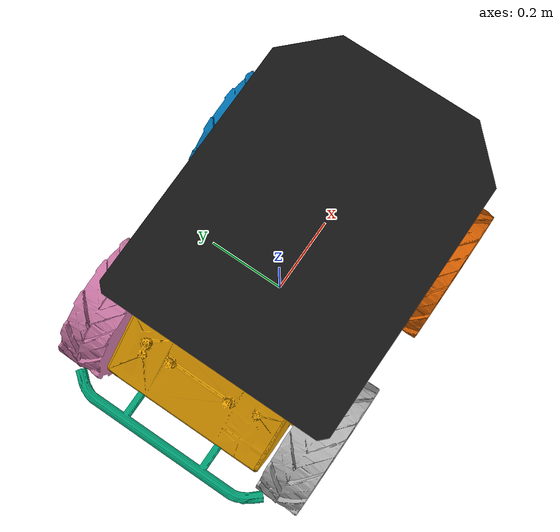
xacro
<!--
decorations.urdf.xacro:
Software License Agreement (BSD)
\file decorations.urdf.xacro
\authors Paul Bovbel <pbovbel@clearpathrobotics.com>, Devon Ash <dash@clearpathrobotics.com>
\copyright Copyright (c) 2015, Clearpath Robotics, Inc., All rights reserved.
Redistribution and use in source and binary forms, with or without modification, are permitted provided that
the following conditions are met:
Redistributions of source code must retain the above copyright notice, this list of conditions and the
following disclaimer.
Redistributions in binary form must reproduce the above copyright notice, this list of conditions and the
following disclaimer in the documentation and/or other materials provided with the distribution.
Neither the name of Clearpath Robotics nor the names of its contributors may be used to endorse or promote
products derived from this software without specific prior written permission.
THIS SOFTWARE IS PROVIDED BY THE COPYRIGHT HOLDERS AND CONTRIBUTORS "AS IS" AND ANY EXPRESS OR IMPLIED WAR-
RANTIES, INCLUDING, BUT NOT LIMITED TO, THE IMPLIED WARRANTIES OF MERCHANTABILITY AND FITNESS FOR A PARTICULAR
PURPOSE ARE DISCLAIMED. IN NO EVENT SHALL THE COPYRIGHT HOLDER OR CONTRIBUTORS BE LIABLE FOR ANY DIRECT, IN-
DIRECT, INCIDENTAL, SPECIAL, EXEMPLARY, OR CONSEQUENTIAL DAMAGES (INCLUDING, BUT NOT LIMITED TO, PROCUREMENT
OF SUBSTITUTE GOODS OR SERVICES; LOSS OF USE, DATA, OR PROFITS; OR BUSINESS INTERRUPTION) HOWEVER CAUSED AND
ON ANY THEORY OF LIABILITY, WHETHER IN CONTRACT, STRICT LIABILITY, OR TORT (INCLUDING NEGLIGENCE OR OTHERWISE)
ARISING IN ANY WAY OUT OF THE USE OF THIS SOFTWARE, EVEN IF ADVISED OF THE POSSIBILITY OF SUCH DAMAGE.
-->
<?xml version="1.0"?>

<robot name="husky" xmlns:xacro="http://ros.org/wiki/xacro">
  <xacro:property name="M_PI" value="3.1415926535897931" />
  <xacro:arg name="laser_enabled" default="false" />
  <xacro:arg name="laser_xyz" default="$(optenv HUSKY_LMS1XX_XYZ 0.35 0.0 0.006)" />
  <xacro:arg name="laser_rpy" default="$(optenv HUSKY_LMS1XX_RPY 0.0 -${M_PI/360*300} 0.0)" />
  <xacro:arg name="robot_namespace" default="/" />
  <xacro:arg name="urdf_extras" default="empty.urdf" />

  <!-- Included URDF/XACRO Files -->
  <xacro:include filename="$(find husky_description)/urdf/decorations.urdf.xacro" />
  <xacro:include filename="$(find husky_description)/urdf/wheel.urdf.xacro" />
  <xacro:include filename="$(find husky_description)/urdf/accessories/sick_m8_mount.urdf.xacro"/>
  <xacro:property name="M_PI" value="3.14159"/>

  <!-- Base Size -->
  <xacro:property name="base_x_size" value="0.98740000" />
  <xacro:property name="base_y_size" value="0.57090000" />
  <xacro:property name="base_z_size" value="0.24750000" />

  <!-- Wheel Mounting Positions -->
  <xacro:property name="wheelbase" value="0.5120" />
  <xacro:property name="track" value="0.5708" />
  <xacro:property name="wheel_vertical_offset" value="0.03282" />

  <!-- Wheel Properties -->
  <xacro:property name="wheel_length" value="0.1143" />
  <xacro:property name="wheel_radius" value="0.1651" />

  <!-- Base link is the center of the robot's bottom plate -->
  <link name="base_link">
    <visual>
      <origin xyz="0 0 0" rpy="0 0 0" />
      <geometry>
        <mesh filename="package://husky_description/meshes/base_link.dae" />
      </geometry>
    </visual>
    <collision>
      <origin xyz="0 0 ${base_z_size/4}" rpy="0 0 0" />
      <geometry>
        <box size="${base_x_size} ${base_y_size} ${base_z_size/2}"/>
      </geometry>
    </collision>
    <collision>
      <origin xyz="0 0 ${base_z_size*3/4}" rpy="0 0 0" />
      <geometry>
        <box size="${base_x_size*4/5} ${base_y_size} ${base_z_size/2}"/>
      </geometry>
    </collision>
  </link>

  <!-- Base footprint is on the ground under the robot -->
  <link name="base_footprint"/>

  <joint name="base_footprint_joint" type="fixed">
    <origin xyz="0 0 ${wheel_vertical_offset - wheel_radius}" rpy="0 0 0" />
    <parent link="base_link" />
    <child link="base_footprint" />
  </joint>

  <!-- Interial link stores the robot's inertial information -->
  <link name="inertial_link">
    <inertial>
      <mass value="46.034" />
      <origin xyz="-0.00065 -0.085 0.062" />
      <inertia ixx="0.6022" ixy="-0.02364" ixz="-0.1197" iyy="1.7386" iyz="-0.001544" izz="2.0296" />
    </inertial>
  </link>

  <joint name="inertial_joint" type="fixed">
    <origin xyz="0 0 0" rpy="0 0 0" />
    <parent link="base_link" />
    <child link="inertial_link" />
  </joint>

  <!-- IMU Link is the standard mounting position for the UM6 IMU.-->
  <!-- Can be modified with environment variables in /etc/ros/setup.bash -->
  <link name="imu_link"/>
  <joint name="imu_joint" type="fixed">
    <origin xyz="$(optenv HUSKY_IMU_XYZ 0.19 0 0.149)" rpy="$(optenv HUSKY_IMU_RPY 0 -1.5708 3.1416)" />
    <parent link="base_link" />
    <child link="imu_link" />
  </joint>
  <gazebo reference="imu_link">
  </gazebo>

  <!-- Husky wheel macros -->
  <xacro:husky_wheel wheel_prefix="front_left">
    <origin xyz="${wheelbase/2} ${track/2} ${wheel_vertical_offset}" rpy="0 0 0" />
  </xacro:husky_wheel>
  <xacro:husky_wheel wheel_prefix="front_right">
    <origin xyz="${wheelbase/2} ${-track/2} ${wheel_vertical_offset}" rpy="0 0 0" />
  </xacro:husky_wheel>
  <xacro:husky_wheel wheel_prefix="rear_left">
    <origin xyz="${-wheelbase/2} ${track/2} ${wheel_vertical_offset}" rpy="0 0 0" />
  </xacro:husky_wheel>
  <xacro:husky_wheel wheel_prefix="rear_right">
    <origin xyz="${-wheelbase/2} ${-track/2} ${wheel_vertical_offset}" rpy="0 0 0" />
  </xacro:husky_wheel>

  <xacro:husky_decorate />

  <xacro:if value="$(arg laser_enabled)">

    <sick_m8_mount prefix="base"/>

    <sick_m8 frame="base_laser" topic="m8_husky_lidar" robot_namespace="$(arg robot_namespace)"/>

    <joint name="laser_mount_joint" type="fixed">
      <origin xyz="$(arg laser_xyz)" rpy="$(arg laser_rpy)" />
      <parent link="top_plate_link" />
      <child link="base_laser_mount" />
    </joint>

  </xacro:if>

  <gazebo>
    <plugin name="ground_truth" filename="libgazebo_ros_p3d.so">
      <frameName>world</frameName>
      <alwaysOn>true</alwaysOn>
      <bodyName>base_link</bodyName>
      <topicName>base_pose_ground_truth</topicName>
      <updateRate>50.0</updateRate>
    </plugin>
  </gazebo>

  <gazebo>
    <plugin name="gazebo_ros_control" filename="libgazebo_ros_control.so">
      <robotNamespace>$(arg robot_namespace)</robotNamespace>
      <legacyModeNS>true</legacyModeNS>
    </plugin>
  </gazebo>

  <gazebo>
    <plugin name="imu_controller" filename="libhector_gazebo_ros_imu.so">
      <robotNamespace>$(arg robot_namespace)</robotNamespace>
      <updateRate>50.0</updateRate>
      <bodyName>base_link</bodyName>
      <frameId>$(arg robot_namespace)/base_link</frameId>
      <topicName>imu/data</topicName>
      <accelDrift>0.005 0.005 0.005</accelDrift>
      <accelGaussianNoise>0.005 0.005 0.005</accelGaussianNoise>
      <rateDrift>0.005 0.005 0.005 </rateDrift>
      <rateGaussianNoise>0.005 0.005 0.005 </rateGaussianNoise>
      <headingDrift>0.005</headingDrift>
      <headingGaussianNoise>0.0</headingGaussianNoise>
    </plugin>
  </gazebo>

  <gazebo>
    <plugin name="gps_controller" filename="libhector_gazebo_ros_gps.so">
      <robotNamespace>$(arg robot_namespace)</robotNamespace>
      <updateRate>40</updateRate>
      <bodyName>base_link</bodyName>
      <frameId>$(arg robot_namespace)/base_link</frameId>
      <topicName>navsat/fix</topicName>
      <velocityTopicName>navsat/vel</velocityTopicName>
      <referenceLatitude>49.9</referenceLatitude>
      <referenceLongitude>8.9</referenceLongitude>
      <referenceHeading>0</referenceHeading>
      <referenceAltitude>0</referenceAltitude>
      <drift>0.0001 0.0001 0.0001</drift>
    </plugin>
  </gazebo>

</robot>

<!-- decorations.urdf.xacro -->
<robot name="husky_decorations" xmlns:xacro="http://ros.org/wiki/xacro">

  <xacro:macro name="husky_decorate">

    <!-- Spawn Husky chassis -->
    <link name="top_chassis_link">
      <visual>
        <origin xyz="0 0 0" rpy="0 0 0" />
        <geometry>
          <mesh filename="package://husky_description/meshes/top_chassis.dae" />
        </geometry>
      </visual>
    </link>

    <!-- Attach chassis to the robot -->
    <joint name="top_chassis_joint" type="fixed">
      <parent link="base_link" />
      <child link="top_chassis_link" />
    </joint>

    <!-- Spawn user rails -->
    <link name="user_rail_link">
      <visual>
        <geometry>
          <mesh filename="package://husky_description/meshes/user_rail.dae" />
        </geometry>
      </visual>
    </link>

    <!-- Attach user rails to base link -->
    <joint name="user_rail" type="fixed">
      <origin xyz="0.272 0 0.245" rpy="0 0 0" />
      <parent link="base_link" />
      <child link="user_rail_link" />
    </joint>

    <!-- Spawn rear bumper link -->
    <link name="rear_bumper_link">
      <visual>
        <geometry>
          <mesh filename="package://husky_description/meshes/bumper.dae" />
        </geometry>
      </visual>
    </link>

    <!-- Attach rear bumper -->
    <joint name="rear_bumper" type="fixed">
      <origin xyz="-0.48 0 0.091" rpy="0 0 ${M_PI}" />
      <parent link="base_link" />
      <child link="rear_bumper_link" />
    </joint>

    <xacro:if value="$(optenv HUSKY_TOP_PLATE_ENABLED true)">
      <!-- Spawn the top plate -->
      <link name="top_plate_link">
        <visual>
          <origin xyz="0 0 0" rpy="0 0 0" />
          <geometry>
            <mesh filename="package://husky_description/meshes/top_plate.dae" />
          </geometry>
        </visual>
        <collision>
          <origin xyz="0 0 0" rpy="0 0 0"/>
          <geometry>
            <mesh filename="package://husky_description/meshes/top_plate.stl" />
          </geometry>
        </collision>
        <collision>
          <!-- Extra collision tag for widgets on top plate -->
          <geometry>
            <box size="0.32 0.41 0.09" rpy="0 0 0"/>
          </geometry>
        </collision>
      </link>

      <!-- Attach top plate -->
      <joint name="top_plate_joint" type="fixed">
        <parent link="base_link" />
        <child link="top_plate_link"/>
        <origin xyz="0.0812 0 0.245" rpy="0 0 0"/>
      </joint>
    </xacro:if>

  </xacro:macro>

</robot>

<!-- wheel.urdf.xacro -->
<robot xmlns:xacro="http://ros.org/wiki/xacro" name="husky_wheel">

	<xacro:macro name="husky_wheel" params="wheel_prefix *joint_pose">
		<link name="${wheel_prefix}_wheel_link">
			<inertial>
				<mass value="2.637" />
				<origin xyz="0 0 0" />
				<inertia  ixx="0.02467" ixy="0" ixz="0" iyy="0.04411" iyz="0" izz="0.02467" />
			</inertial>
			<visual>
				<origin xyz="0 0 0" rpy="0 0 0" />
				<geometry>
					<mesh filename="package://husky_description/meshes/wheel.dae" />
				</geometry>
			</visual>
			<collision>
				<origin xyz="0 0 0" rpy="${M_PI/2} 0 0" />
				<geometry>
					<cylinder length="${wheel_length}" radius="${wheel_radius}" />
				</geometry>
			</collision>
		</link>

		<gazebo reference="${wheel_prefix}_wheel_link">
			<mu1 value="1.0"/>
			<mu2 value="1.0"/>
			<kp value="10000000.0" />
			<kd value="1.0" />
			<fdir1 value="1 0 0"/>
		</gazebo>

		<joint name="${wheel_prefix}_wheel" type="continuous">
			<parent link="base_link"/>
			<child link="${wheel_prefix}_wheel_link"/>
			<xacro:insert_block name="joint_pose"/>
			<axis xyz="0 1 0" rpy="0 0 0" />
		</joint>

		<transmission name="${wheel_prefix}_wheel_trans" type="SimpleTransmission">
			<type>transmission_interface/SimpleTransmission</type>
			<actuator name="${wheel_prefix}_wheel_motor">
				<mechanicalReduction>1</mechanicalReduction>
			</actuator>
			<joint name="${wheel_prefix}_wheel">
				<hardwareInterface>VelocityJointInterface</hardwareInterface>
			</joint>
		</transmission>

	</xacro:macro>
</robot>
